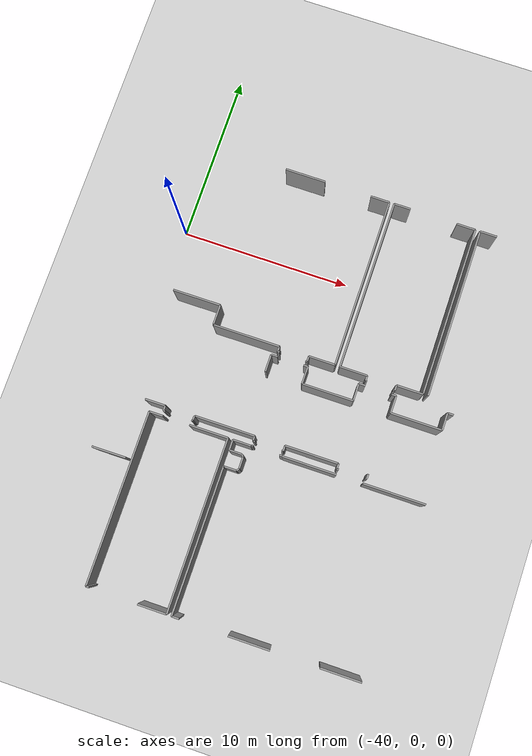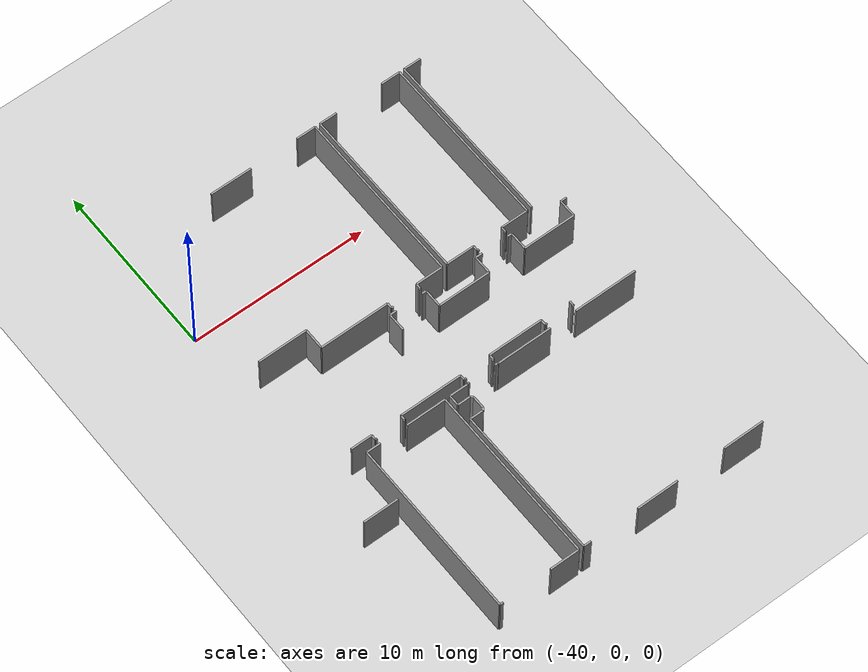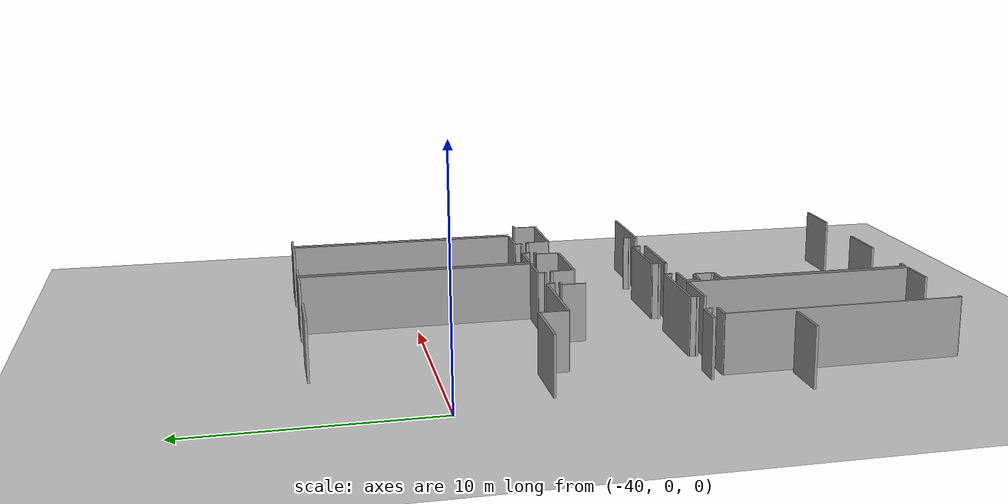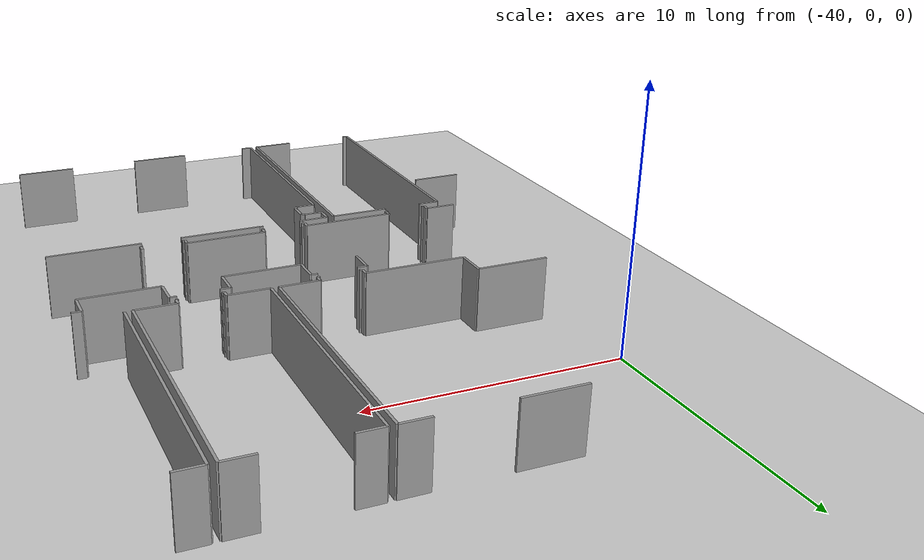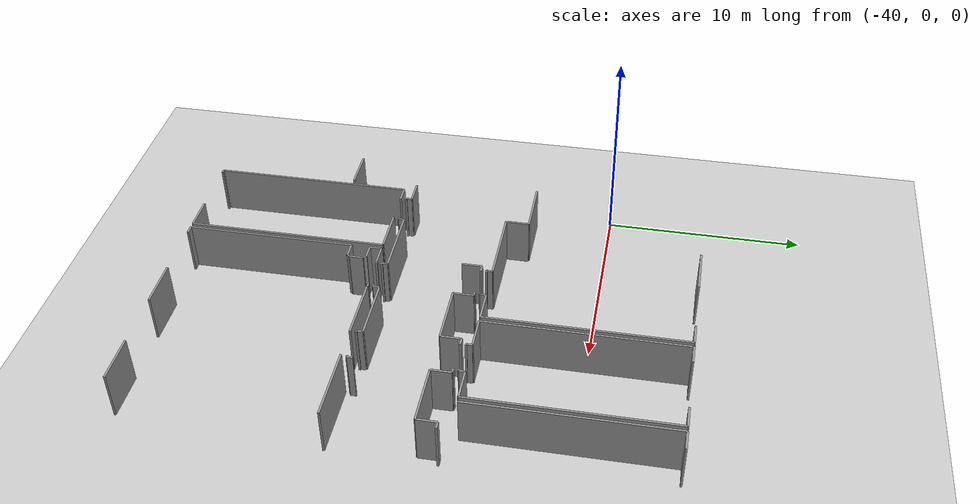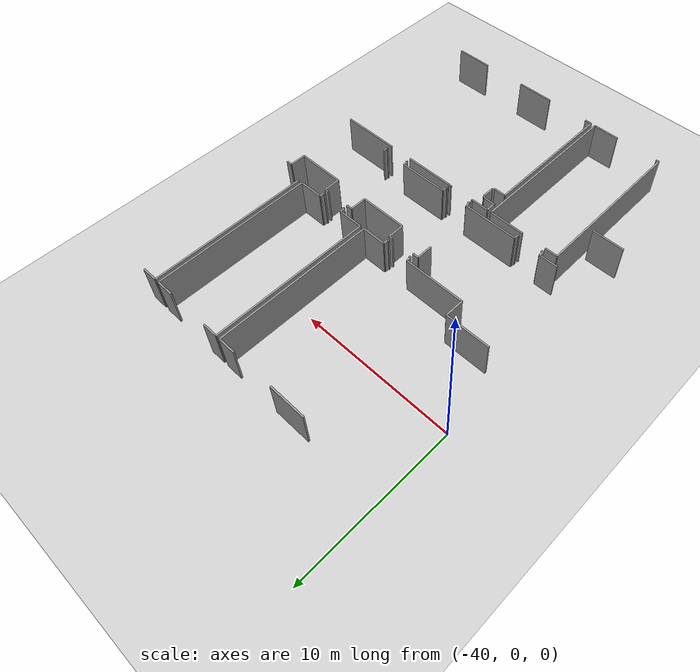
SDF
<sdf version="1.6">
 <world name="default">
  <model name="ground_plane">
   <static>1</static>
   <link name="link">
    <collision name="collision">
     <geometry><plane><normal>0 0 1</normal><size>100 100</size></plane></geometry>
     <surface><friction><ode><mu>100</mu><mu2>50</mu2></ode></friction></surface>
    </collision>
    <visual name="visual">
     <cast_shadows>0</cast_shadows>
     <geometry><plane><normal>0 0 1</normal><size>100 100</size></plane></geometry>
     <material>
      <script><uri>file://media/materials/scripts/gazebo.material</uri><name>Gazebo/Grey</name></script>
     </material>
    </visual>
   </link>
  </model>
  <model name="50055638">
   <static>1</static>
   <link name="Wall_106">
    <collision name="Wall_106_Collision">
     <geometry><box><size>1.99429670992 0.1 2.5</size></box></geometry>
     <pose>0.997148354958 0 1.25 0 0 0</pose>
    </collision>
    <visual name="Wall_106_Visual">
     <pose>0.997148354958 0 1.25 0 0 0</pose>
     <geometry><box><size>1.99429670992 0.1 2.5</size></box></geometry>
     <material>
      <script><uri>file://media/materials/scripts/gazebo.material</uri><name>Gazebo/Grey</name></script>
      <ambient>1 1 1 1</ambient>
     </material>
    </visual>
    <pose>32.276132919 -34.5657382164 0 0 0 -3.13974446246</pose>
   </link>
   <link name="Wall_107">
    <collision name="Wall_107_Collision">
     <geometry><box><size>9.97960078547 0.1 2.5</size></box></geometry>
     <pose>4.98980039273 0 1.25 0 0 0</pose>
    </collision>
    <visual name="Wall_107_Visual">
     <pose>4.98980039273 0 1.25 0 0 0</pose>
     <geometry><box><size>9.97960078547 0.1 2.5</size></box></geometry>
     <material>
      <script><uri>file://media/materials/scripts/gazebo.material</uri><name>Gazebo/Grey</name></script>
      <ambient>1 1 1 1</ambient>
     </material>
    </visual>
    <pose>32.6238728004 -41.7203337591 0 0 0 1.57079632679</pose>
   </link>
   <link name="Wall_108">
    <collision name="Wall_108_Collision">
     <geometry><box><size>0.806690433976 0.1 2.5</size></box></geometry>
     <pose>0.403345216988 0 1.25 0 0 0</pose>
    </collision>
    <visual name="Wall_108_Visual">
     <pose>0.403345216988 0 1.25 0 0 0</pose>
     <geometry><box><size>0.806690433976 0.1 2.5</size></box></geometry>
     <material>
      <script><uri>file://media/materials/scripts/gazebo.material</uri><name>Gazebo/Grey</name></script>
      <ambient>1 1 1 1</ambient>
     </material>
    </visual>
    <pose>32.6238728004 -31.7407329736 0 0 0 0.0</pose>
   </link>
   <link name="Wall_109">
    <collision name="Wall_109_Collision">
     <geometry><box><size>2.26513894979 0.1 2.5</size></box></geometry>
     <pose>1.13256947489 0 1.25 0 0 0</pose>
    </collision>
    <visual name="Wall_109_Visual">
     <pose>1.13256947489 0 1.25 0 0 0</pose>
     <geometry><box><size>2.26513894979 0.1 2.5</size></box></geometry>
     <material>
      <script><uri>file://media/materials/scripts/gazebo.material</uri><name>Gazebo/Grey</name></script>
      <ambient>1 1 1 1</ambient>
     </material>
    </visual>
    <pose>34.9831913014 -31.7407329736 0 0 0 0.0</pose>
   </link>
   <link name="Wall_110">
    <collision name="Wall_110_Collision">
     <geometry><box><size>9.98748085588 0.1 2.5</size></box></geometry>
     <pose>4.99374042794 0 1.25 0 0 0</pose>
    </collision>
    <visual name="Wall_110_Visual">
     <pose>4.99374042794 0 1.25 0 0 0</pose>
     <geometry><box><size>9.98748085588 0.1 2.5</size></box></geometry>
     <material>
      <script><uri>file://media/materials/scripts/gazebo.material</uri><name>Gazebo/Grey</name></script>
      <ambient>1 1 1 1</ambient>
     </material>
    </visual>
    <pose>37.2483302512 -31.7407329736 0 0 0 -1.57079632679</pose>
   </link>
   <link name="Wall_111">
    <collision name="Wall_111_Collision">
     <geometry><box><size>1.66536391309 0.1 2.5</size></box></geometry>
     <pose>0.832681956545 0 1.25 0 0 0</pose>
    </collision>
    <visual name="Wall_111_Visual">
     <pose>0.832681956545 0 1.25 0 0 0</pose>
     <geometry><box><size>1.66536391309 0.1 2.5</size></box></geometry>
     <material>
      <script><uri>file://media/materials/scripts/gazebo.material</uri><name>Gazebo/Grey</name></script>
      <ambient>1 1 1 1</ambient>
     </material>
    </visual>
    <pose>37.2483302512 -41.7282138295 0 0 0 3.14159265359</pose>
   </link>
   <link name="Wall_112">
    <collision name="Wall_112_Collision">
     <geometry><box><size>0.182174715188 0.1 2.5</size></box></geometry>
     <pose>0.091087357594 0 1.25 0 0 0</pose>
    </collision>
    <visual name="Wall_112_Visual">
     <pose>0.091087357594 0 1.25 0 0 0</pose>
     <geometry><box><size>0.182174715188 0.1 2.5</size></box></geometry>
     <material>
      <script><uri>file://media/materials/scripts/gazebo.material</uri><name>Gazebo/Grey</name></script>
      <ambient>1 1 1 1</ambient>
     </material>
    </visual>
    <pose>32.8058770074 -41.7282138295 0 0 0 3.0983235874</pose>
   </link>
   <link name="Wall_113">
    <collision name="Wall_113_Collision">
     <geometry><box><size>8.43904701987 0.1 2.5</size></box></geometry>
     <pose>4.21952350994 0 1.25 0 0 0</pose>
    </collision>
    <visual name="Wall_113_Visual">
     <pose>4.21952350994 0 1.25 0 0 0</pose>
     <geometry><box><size>8.43904701987 0.1 2.5</size></box></geometry>
     <material>
      <script><uri>file://media/materials/scripts/gazebo.material</uri><name>Gazebo/Grey</name></script>
      <ambient>1 1 1 1</ambient>
     </material>
    </visual>
    <pose>37.5308689049 -41.7291035149 0 0 0 1.57079632679</pose>
   </link>
   <link name="Wall_114">
    <collision name="Wall_114_Collision">
     <geometry><box><size>0.747971199614 0.1 2.5</size></box></geometry>
     <pose>0.373985599807 0 1.25 0 0 0</pose>
    </collision>
    <visual name="Wall_114_Visual">
     <pose>0.373985599807 0 1.25 0 0 0</pose>
     <geometry><box><size>0.747971199614 0.1 2.5</size></box></geometry>
     <material>
      <script><uri>file://media/materials/scripts/gazebo.material</uri><name>Gazebo/Grey</name></script>
      <ambient>1 1 1 1</ambient>
     </material>
    </visual>
    <pose>37.5308689049 -33.290056495 0 0 0 0.0</pose>
   </link>
   <link name="Wall_115">
    <collision name="Wall_115_Collision">
     <geometry><box><size>0.171066137984 0.1 2.5</size></box></geometry>
     <pose>0.0855330689918 0 1.25 0 0 0</pose>
    </collision>
    <visual name="Wall_115_Visual">
     <pose>0.0855330689918 0 1.25 0 0 0</pose>
     <geometry><box><size>0.171066137984 0.1 2.5</size></box></geometry>
     <material>
      <script><uri>file://media/materials/scripts/gazebo.material</uri><name>Gazebo/Grey</name></script>
      <ambient>1 1 1 1</ambient>
     </material>
    </visual>
    <pose>38.2788401045 -33.290056495 0 0 0 0.91288099865</pose>
   </link>
   <link name="Wall_116">
    <collision name="Wall_116_Collision">
     <geometry><box><size>0.687472594513 0.1 2.5</size></box></geometry>
     <pose>0.343736297257 0 1.25 0 0 0</pose>
    </collision>
    <visual name="Wall_116_Visual">
     <pose>0.343736297257 0 1.25 0 0 0</pose>
     <geometry><box><size>0.687472594513 0.1 2.5</size></box></geometry>
     <material>
      <script><uri>file://media/materials/scripts/gazebo.material</uri><name>Gazebo/Grey</name></script>
      <ambient>1 1 1 1</ambient>
     </material>
    </visual>
    <pose>38.3834416843 -33.154697221 0 0 0 1.57079632679</pose>
   </link>
   <link name="Wall_117">
    <collision name="Wall_117_Collision">
     <geometry><box><size>0.177099980748 0.1 2.5</size></box></geometry>
     <pose>0.0885499903742 0 1.25 0 0 0</pose>
    </collision>
    <visual name="Wall_117_Visual">
     <pose>0.0885499903742 0 1.25 0 0 0</pose>
     <geometry><box><size>0.177099980748 0.1 2.5</size></box></geometry>
     <material>
      <script><uri>file://media/materials/scripts/gazebo.material</uri><name>Gazebo/Grey</name></script>
      <ambient>1 1 1 1</ambient>
     </material>
    </visual>
    <pose>38.3834416843 -32.4672246265 0 0 0 2.3805551524</pose>
   </link>
   <link name="Wall_118">
    <collision name="Wall_118_Collision">
     <geometry><box><size>0.720263855261 0.1 2.5</size></box></geometry>
     <pose>0.36013192763 0 1.25 0 0 0</pose>
    </collision>
    <visual name="Wall_118_Visual">
     <pose>0.36013192763 0 1.25 0 0 0</pose>
     <geometry><box><size>0.720263855261 0.1 2.5</size></box></geometry>
     <material>
      <script><uri>file://media/materials/scripts/gazebo.material</uri><name>Gazebo/Grey</name></script>
      <ambient>1 1 1 1</ambient>
     </material>
    </visual>
    <pose>38.2551998932 -32.3450835351 0 0 0 3.14159265359</pose>
   </link>
   <link name="Wall_119">
    <collision name="Wall_119_Collision">
     <geometry><box><size>0.598122763871 0.1 2.5</size></box></geometry>
     <pose>0.299061381936 0 1.25 0 0 0</pose>
    </collision>
    <visual name="Wall_119_Visual">
     <pose>0.299061381936 0 1.25 0 0 0</pose>
     <geometry><box><size>0.598122763871 0.1 2.5</size></box></geometry>
     <material>
      <script><uri>file://media/materials/scripts/gazebo.material</uri><name>Gazebo/Grey</name></script>
      <ambient>1 1 1 1</ambient>
     </material>
    </visual>
    <pose>37.534936038 -32.3450835351 0 0 0 1.57079632679</pose>
   </link>
   <link name="Wall_120">
    <collision name="Wall_120_Collision">
     <geometry><box><size>1.05974237254 0.1 2.5</size></box></geometry>
     <pose>0.529871186268 0 1.25 0 0 0</pose>
    </collision>
    <visual name="Wall_120_Visual">
     <pose>0.529871186268 0 1.25 0 0 0</pose>
     <geometry><box><size>1.05974237254 0.1 2.5</size></box></geometry>
     <material>
      <script><uri>file://media/materials/scripts/gazebo.material</uri><name>Gazebo/Grey</name></script>
      <ambient>1 1 1 1</ambient>
     </material>
    </visual>
    <pose>37.534936038 -31.7469607712 0 0 0 0.0</pose>
   </link>
   <link name="Wall_121">
    <collision name="Wall_121_Collision">
     <geometry><box><size>0.0251653861552 0.1 2.5</size></box></geometry>
     <pose>0.0125826930776 0 1.25 0 0 0</pose>
    </collision>
    <visual name="Wall_121_Visual">
     <pose>0.0125826930776 0 1.25 0 0 0</pose>
     <geometry><box><size>0.0251653861552 0.1 2.5</size></box></geometry>
     <material>
      <script><uri>file://media/materials/scripts/gazebo.material</uri><name>Gazebo/Grey</name></script>
      <ambient>1 1 1 1</ambient>
     </material>
    </visual>
    <pose>38.5946784105 -31.7469607712 0 0 0 1.57079632679</pose>
   </link>
   <link name="Wall_122">
    <collision name="Wall_122_Collision">
     <geometry><box><size>0.113244237699 0.1 2.5</size></box></geometry>
     <pose>0.0566221188493 0 1.25 0 0 0</pose>
    </collision>
    <visual name="Wall_122_Visual">
     <pose>0.0566221188493 0 1.25 0 0 0</pose>
     <geometry><box><size>0.113244237699 0.1 2.5</size></box></geometry>
     <material>
      <script><uri>file://media/materials/scripts/gazebo.material</uri><name>Gazebo/Grey</name></script>
      <ambient>1 1 1 1</ambient>
     </material>
    </visual>
    <pose>38.5946784105 -31.7217953851 0 0 0 0.0</pose>
   </link>
   <link name="Wall_123">
    <collision name="Wall_123_Collision">
     <geometry><box><size>0.161541443451 0.1 2.5</size></box></geometry>
     <pose>0.0807707217255 0 1.25 0 0 0</pose>
    </collision>
    <visual name="Wall_123_Visual">
     <pose>0.0807707217255 0 1.25 0 0 0</pose>
     <geometry><box><size>0.161541443451 0.1 2.5</size></box></geometry>
     <material>
      <script><uri>file://media/materials/scripts/gazebo.material</uri><name>Gazebo/Grey</name></script>
      <ambient>1 1 1 1</ambient>
     </material>
    </visual>
    <pose>40.241104735 -31.7217953851 0 0 0 0.0</pose>
   </link>
   <link name="Wall_124">
    <collision name="Wall_124_Collision">
     <geometry><box><size>0.0218608404985 0.1 2.5</size></box></geometry>
     <pose>0.0109304202492 0 1.25 0 0 0</pose>
    </collision>
    <visual name="Wall_124_Visual">
     <pose>0.0109304202492 0 1.25 0 0 0</pose>
     <geometry><box><size>0.0218608404985 0.1 2.5</size></box></geometry>
     <material>
      <script><uri>file://media/materials/scripts/gazebo.material</uri><name>Gazebo/Grey</name></script>
      <ambient>1 1 1 1</ambient>
     </material>
    </visual>
    <pose>40.4026461785 -31.7217953851 0 0 0 -1.57079632679</pose>
   </link>
   <link name="Wall_125">
    <collision name="Wall_125_Collision">
     <geometry><box><size>3.15609529801 0.1 2.5</size></box></geometry>
     <pose>1.57804764901 0 1.25 0 0 0</pose>
    </collision>
    <visual name="Wall_125_Visual">
     <pose>1.57804764901 0 1.25 0 0 0</pose>
     <geometry><box><size>3.15609529801 0.1 2.5</size></box></geometry>
     <material>
      <script><uri>file://media/materials/scripts/gazebo.material</uri><name>Gazebo/Grey</name></script>
      <ambient>1 1 1 1</ambient>
     </material>
    </visual>
    <pose>40.4026461785 -31.7436562256 0 0 0 0.0</pose>
   </link>
   <link name="Wall_126">
    <collision name="Wall_126_Collision">
     <geometry><box><size>3.60881805299 0.1 2.5</size></box></geometry>
     <pose>1.80440902649 0 1.25 0 0 0</pose>
    </collision>
    <visual name="Wall_126_Visual">
     <pose>1.80440902649 0 1.25 0 0 0</pose>
     <geometry><box><size>3.60881805299 0.1 2.5</size></box></geometry>
     <material>
      <script><uri>file://media/materials/scripts/gazebo.material</uri><name>Gazebo/Grey</name></script>
      <ambient>1 1 1 1</ambient>
     </material>
    </visual>
    <pose>45.0959906964 -31.7436562256 0 0 0 0.0</pose>
   </link>
   <link name="Wall_130">
    <collision name="Wall_130_Collision">
     <geometry><box><size>2.34482933928 0.1 2.5</size></box></geometry>
     <pose>1.17241466964 0 1.25 0 0 0</pose>
    </collision>
    <visual name="Wall_130_Visual">
     <pose>1.17241466964 0 1.25 0 0 0</pose>
     <geometry><box><size>2.34482933928 0.1 2.5</size></box></geometry>
     <material>
      <script><uri>file://media/materials/scripts/gazebo.material</uri><name>Gazebo/Grey</name></script>
      <ambient>1 1 1 1</ambient>
     </material>
    </visual>
    <pose>48.2642873938 -41.7353313125 0 0 0 3.14159265359</pose>
   </link>
   <link name="Wall_131">
    <collision name="Wall_131_Collision">
     <geometry><box><size>2.36897794216 0.1 2.5</size></box></geometry>
     <pose>1.18448897108 0 1.25 0 0 0</pose>
    </collision>
    <visual name="Wall_131_Visual">
     <pose>1.18448897108 0 1.25 0 0 0</pose>
     <geometry><box><size>2.36897794216 0.1 2.5</size></box></geometry>
     <material>
      <script><uri>file://media/materials/scripts/gazebo.material</uri><name>Gazebo/Grey</name></script>
      <ambient>1 1 1 1</ambient>
     </material>
    </visual>
    <pose>43.1066542111 -41.7353313125 0 0 0 3.14159265359</pose>
   </link>
   <link name="Wall_132">
    <collision name="Wall_132_Collision">
     <geometry><box><size>0.434211124416 0.1 2.5</size></box></geometry>
     <pose>0.217105562208 0 1.25 0 0 0</pose>
    </collision>
    <visual name="Wall_132_Visual">
     <pose>0.217105562208 0 1.25 0 0 0</pose>
     <geometry><box><size>0.434211124416 0.1 2.5</size></box></geometry>
     <material>
      <script><uri>file://media/materials/scripts/gazebo.material</uri><name>Gazebo/Grey</name></script>
      <ambient>1 1 1 1</ambient>
     </material>
    </visual>
    <pose>37.965035365 -41.7353313125 0 0 0 3.12724937499</pose>
   </link>
   <link name="Wall_146">
    <collision name="Wall_146_Collision">
     <geometry><box><size>2.38867811819 0.1 2.5</size></box></geometry>
     <pose>1.19433905909 0 1.25 0 0 0</pose>
    </collision>
    <visual name="Wall_146_Visual">
     <pose>1.19433905909 0 1.25 0 0 0</pose>
     <geometry><box><size>2.38867811819 0.1 2.5</size></box></geometry>
     <material>
      <script><uri>file://media/materials/scripts/gazebo.material</uri><name>Gazebo/Grey</name></script>
      <ambient>1 1 1 1</ambient>
     </material>
    </visual>
    <pose>35.3083077549 -15.9814818345 0 0 0 0.0</pose>
   </link>
   <link name="Wall_147">
    <collision name="Wall_147_Collision">
     <geometry><box><size>1.11528415915 0.1 2.5</size></box></geometry>
     <pose>0.557642079576 0 1.25 0 0 0</pose>
    </collision>
    <visual name="Wall_147_Visual">
     <pose>0.557642079576 0 1.25 0 0 0</pose>
     <geometry><box><size>1.11528415915 0.1 2.5</size></box></geometry>
     <material>
      <script><uri>file://media/materials/scripts/gazebo.material</uri><name>Gazebo/Grey</name></script>
      <ambient>1 1 1 1</ambient>
     </material>
    </visual>
    <pose>40.4621280003 -15.9814818345 0 0 0 0.0</pose>
   </link>
   <link name="Wall_148">
    <collision name="Wall_148_Collision">
     <geometry><box><size>9.99218347854 0.1 2.5</size></box></geometry>
     <pose>4.99609173927 0 1.25 0 0 0</pose>
    </collision>
    <visual name="Wall_148_Visual">
     <pose>4.99609173927 0 1.25 0 0 0</pose>
     <geometry><box><size>9.99218347854 0.1 2.5</size></box></geometry>
     <material>
      <script><uri>file://media/materials/scripts/gazebo.material</uri><name>Gazebo/Grey</name></script>
      <ambient>1 1 1 1</ambient>
     </material>
    </visual>
    <pose>41.5774121595 -15.9814818345 0 0 0 -1.57079632679</pose>
   </link>
   <link name="Wall_149">
    <collision name="Wall_149_Collision">
     <geometry><box><size>1.54347701752 0.1 2.5</size></box></geometry>
     <pose>0.77173850876 0 1.25 0 0 0</pose>
    </collision>
    <visual name="Wall_149_Visual">
     <pose>0.77173850876 0 1.25 0 0 0</pose>
     <geometry><box><size>1.54347701752 0.1 2.5</size></box></geometry>
     <material>
      <script><uri>file://media/materials/scripts/gazebo.material</uri><name>Gazebo/Grey</name></script>
      <ambient>1 1 1 1</ambient>
     </material>
    </visual>
    <pose>41.5774121595 -25.9736653131 0 0 0 3.14159265359</pose>
   </link>
   <link name="Wall_150">
    <collision name="Wall_150_Collision">
     <geometry><box><size>0.305797571159 0.1 2.5</size></box></geometry>
     <pose>0.152898785579 0 1.25 0 0 0</pose>
    </collision>
    <visual name="Wall_150_Visual">
     <pose>0.152898785579 0 1.25 0 0 0</pose>
     <geometry><box><size>0.305797571159 0.1 2.5</size></box></geometry>
     <material>
      <script><uri>file://media/materials/scripts/gazebo.material</uri><name>Gazebo/Grey</name></script>
      <ambient>1 1 1 1</ambient>
     </material>
    </visual>
    <pose>40.0339351419 -25.9736653131 0 0 0 -1.57079632679</pose>
   </link>
   <link name="Wall_151">
    <collision name="Wall_151_Collision">
     <geometry><box><size>0.0955776282259 0.1 2.5</size></box></geometry>
     <pose>0.047788814113 0 1.25 0 0 0</pose>
    </collision>
    <visual name="Wall_151_Visual">
     <pose>0.047788814113 0 1.25 0 0 0</pose>
     <geometry><box><size>0.0955776282259 0.1 2.5</size></box></geometry>
     <material>
      <script><uri>file://media/materials/scripts/gazebo.material</uri><name>Gazebo/Grey</name></script>
      <ambient>1 1 1 1</ambient>
     </material>
    </visual>
    <pose>40.0339351419 -26.2794628842 0 0 0 3.14159265359</pose>
   </link>
   <link name="Wall_152">
    <collision name="Wall_152_Collision">
     <geometry><box><size>0.116294587535 0.1 2.5</size></box></geometry>
     <pose>0.0581472937677 0 1.25 0 0 0</pose>
    </collision>
    <visual name="Wall_152_Visual">
     <pose>0.0581472937677 0 1.25 0 0 0</pose>
     <geometry><box><size>0.116294587535 0.1 2.5</size></box></geometry>
     <material>
      <script><uri>file://media/materials/scripts/gazebo.material</uri><name>Gazebo/Grey</name></script>
      <ambient>1 1 1 1</ambient>
     </material>
    </visual>
    <pose>38.4074631893 -26.2794628842 0 0 0 3.14159265359</pose>
   </link>
   <link name="Wall_153">
    <collision name="Wall_153_Collision">
     <geometry><box><size>0.305670473249 0.1 2.5</size></box></geometry>
     <pose>0.152835236625 0 1.25 0 0 0</pose>
    </collision>
    <visual name="Wall_153_Visual">
     <pose>0.152835236625 0 1.25 0 0 0</pose>
     <geometry><box><size>0.305670473249 0.1 2.5</size></box></geometry>
     <material>
      <script><uri>file://media/materials/scripts/gazebo.material</uri><name>Gazebo/Grey</name></script>
      <ambient>1 1 1 1</ambient>
     </material>
    </visual>
    <pose>38.2911686017 -26.2794628842 0 0 0 1.57079632679</pose>
   </link>
   <link name="Wall_154">
    <collision name="Wall_154_Collision">
     <geometry><box><size>3.93101125452 0.1 2.5</size></box></geometry>
     <pose>1.96550562726 0 1.25 0 0 0</pose>
    </collision>
    <visual name="Wall_154_Visual">
     <pose>1.96550562726 0 1.25 0 0 0</pose>
     <geometry><box><size>3.93101125452 0.1 2.5</size></box></geometry>
     <material>
      <script><uri>file://media/materials/scripts/gazebo.material</uri><name>Gazebo/Grey</name></script>
      <ambient>1 1 1 1</ambient>
     </material>
    </visual>
    <pose>38.2911686017 -25.973792411 0 0 0 3.14159265359</pose>
   </link>
   <link name="Wall_155">
    <collision name="Wall_155_Collision">
     <geometry><box><size>1.18506091167 0.1 2.5</size></box></geometry>
     <pose>0.592530455837 0 1.25 0 0 0</pose>
    </collision>
    <visual name="Wall_155_Visual">
     <pose>0.592530455837 0 1.25 0 0 0</pose>
     <geometry><box><size>1.18506091167 0.1 2.5</size></box></geometry>
     <material>
      <script><uri>file://media/materials/scripts/gazebo.material</uri><name>Gazebo/Grey</name></script>
      <ambient>1 1 1 1</ambient>
     </material>
    </visual>
    <pose>34.3601573472 -25.973792411 0 0 0 1.57079632679</pose>
   </link>
   <link name="Wall_156">
    <collision name="Wall_156_Collision">
     <geometry><box><size>2.80404943765 0.1 2.5</size></box></geometry>
     <pose>1.40202471882 0 1.25 0 0 0</pose>
    </collision>
    <visual name="Wall_156_Visual">
     <pose>1.40202471882 0 1.25 0 0 0</pose>
     <geometry><box><size>2.80404943765 0.1 2.5</size></box></geometry>
     <material>
      <script><uri>file://media/materials/scripts/gazebo.material</uri><name>Gazebo/Grey</name></script>
      <ambient>1 1 1 1</ambient>
     </material>
    </visual>
    <pose>34.3601573472 -24.7887314993 0 0 0 -3.13828380881</pose>
   </link>
   <link name="Wall_157">
    <collision name="Wall_157_Collision">
     <geometry><box><size>9.99777578658 0.1 2.5</size></box></geometry>
     <pose>4.99888789329 0 1.25 0 0 0</pose>
    </collision>
    <visual name="Wall_157_Visual">
     <pose>4.99888789329 0 1.25 0 0 0</pose>
     <geometry><box><size>9.99777578658 0.1 2.5</size></box></geometry>
     <material>
      <script><uri>file://media/materials/scripts/gazebo.material</uri><name>Gazebo/Grey</name></script>
      <ambient>1 1 1 1</ambient>
     </material>
    </visual>
    <pose>41.864272142 -25.977986642 0 0 0 1.57079632679</pose>
   </link>
   <link name="Wall_158">
    <collision name="Wall_158_Collision">
     <geometry><box><size>0.990855305385 0.1 2.5</size></box></geometry>
     <pose>0.495427652692 0 1.25 0 0 0</pose>
    </collision>
    <visual name="Wall_158_Visual">
     <pose>0.495427652692 0 1.25 0 0 0</pose>
     <geometry><box><size>0.990855305385 0.1 2.5</size></box></geometry>
     <material>
      <script><uri>file://media/materials/scripts/gazebo.material</uri><name>Gazebo/Grey</name></script>
      <ambient>1 1 1 1</ambient>
     </material>
    </visual>
    <pose>41.864272142 -15.9802108554 0 0 0 0.0</pose>
   </link>
   <link name="Wall_159">
    <collision name="Wall_159_Collision">
     <geometry><box><size>1.10575181591 0.1 2.5</size></box></geometry>
     <pose>0.552875907956 0 1.25 0 0 0</pose>
    </collision>
    <visual name="Wall_159_Visual">
     <pose>0.552875907956 0 1.25 0 0 0</pose>
     <geometry><box><size>1.10575181591 0.1 2.5</size></box></geometry>
     <material>
      <script><uri>file://media/materials/scripts/gazebo.material</uri><name>Gazebo/Grey</name></script>
      <ambient>1 1 1 1</ambient>
     </material>
    </visual>
    <pose>45.6355213239 -15.9802108554 0 0 0 0.0</pose>
   </link>
   <link name="Wall_160">
    <collision name="Wall_160_Collision">
     <geometry><box><size>9.99815708031 0.1 2.5</size></box></geometry>
     <pose>4.99907854015 0 1.25 0 0 0</pose>
    </collision>
    <visual name="Wall_160_Visual">
     <pose>4.99907854015 0 1.25 0 0 0</pose>
     <geometry><box><size>9.99815708031 0.1 2.5</size></box></geometry>
     <material>
      <script><uri>file://media/materials/scripts/gazebo.material</uri><name>Gazebo/Grey</name></script>
      <ambient>1 1 1 1</ambient>
     </material>
    </visual>
    <pose>46.7412731398 -15.9802108554 0 0 0 -1.57079632679</pose>
   </link>
   <link name="Wall_161">
    <collision name="Wall_161_Collision">
     <geometry><box><size>1.55656810224 0.1 2.5</size></box></geometry>
     <pose>0.778284051119 0 1.25 0 0 0</pose>
    </collision>
    <visual name="Wall_161_Visual">
     <pose>0.778284051119 0 1.25 0 0 0</pose>
     <geometry><box><size>1.55656810224 0.1 2.5</size></box></geometry>
     <material>
      <script><uri>file://media/materials/scripts/gazebo.material</uri><name>Gazebo/Grey</name></script>
      <ambient>1 1 1 1</ambient>
     </material>
    </visual>
    <pose>46.7412731398 -25.9783679357 0 0 0 3.14159265359</pose>
   </link>
   <link name="Wall_162">
    <collision name="Wall_162_Collision">
     <geometry><box><size>0.296265227918 0.1 2.5</size></box></geometry>
     <pose>0.148132613959 0 1.25 0 0 0</pose>
    </collision>
    <visual name="Wall_162_Visual">
     <pose>0.148132613959 0 1.25 0 0 0</pose>
     <geometry><box><size>0.296265227918 0.1 2.5</size></box></geometry>
     <material>
      <script><uri>file://media/materials/scripts/gazebo.material</uri><name>Gazebo/Grey</name></script>
      <ambient>1 1 1 1</ambient>
     </material>
    </visual>
    <pose>45.1847050375 -25.9783679357 0 0 0 -1.57079632679</pose>
   </link>
   <link name="Wall_163">
    <collision name="Wall_163_Collision">
     <geometry><box><size>0.0955776282259 0.1 2.5</size></box></geometry>
     <pose>0.047788814113 0 1.25 0 0 0</pose>
    </collision>
    <visual name="Wall_163_Visual">
     <pose>0.047788814113 0 1.25 0 0 0</pose>
     <geometry><box><size>0.0955776282259 0.1 2.5</size></box></geometry>
     <material>
      <script><uri>file://media/materials/scripts/gazebo.material</uri><name>Gazebo/Grey</name></script>
      <ambient>1 1 1 1</ambient>
     </material>
    </visual>
    <pose>45.1847050375 -26.2746331637 0 0 0 3.14159265359</pose>
   </link>
   <link name="Wall_164">
    <collision name="Wall_164_Collision">
     <geometry><box><size>0.090366613921 0.1 2.5</size></box></geometry>
     <pose>0.0451833069605 0 1.25 0 0 0</pose>
    </collision>
    <visual name="Wall_164_Visual">
     <pose>0.0451833069605 0 1.25 0 0 0</pose>
     <geometry><box><size>0.090366613921 0.1 2.5</size></box></geometry>
     <material>
      <script><uri>file://media/materials/scripts/gazebo.material</uri><name>Gazebo/Grey</name></script>
      <ambient>1 1 1 1</ambient>
     </material>
    </visual>
    <pose>43.5602666514 -26.2746331637 0 0 0 3.14159265359</pose>
   </link>
   <link name="Wall_165">
    <collision name="Wall_165_Collision">
     <geometry><box><size>0.295121346729 0.1 2.5</size></box></geometry>
     <pose>0.147560673365 0 1.25 0 0 0</pose>
    </collision>
    <visual name="Wall_165_Visual">
     <pose>0.147560673365 0 1.25 0 0 0</pose>
     <geometry><box><size>0.295121346729 0.1 2.5</size></box></geometry>
     <material>
      <script><uri>file://media/materials/scripts/gazebo.material</uri><name>Gazebo/Grey</name></script>
      <ambient>1 1 1 1</ambient>
     </material>
    </visual>
    <pose>43.4699000375 -26.2746331637 0 0 0 1.57079632679</pose>
   </link>
   <link name="Wall_166">
    <collision name="Wall_166_Collision">
     <geometry><box><size>1.60562861983 0.1 2.5</size></box></geometry>
     <pose>0.802814309913 0 1.25 0 0 0</pose>
    </collision>
    <visual name="Wall_166_Visual">
     <pose>0.802814309913 0 1.25 0 0 0</pose>
     <geometry><box><size>1.60562861983 0.1 2.5</size></box></geometry>
     <material>
      <script><uri>file://media/materials/scripts/gazebo.material</uri><name>Gazebo/Grey</name></script>
      <ambient>1 1 1 1</ambient>
     </material>
    </visual>
    <pose>43.4699000375 -25.9795118169 0 0 0 3.14064276074</pose>
   </link>
   <link name="Wall_167">
    <collision name="Wall_167_Collision">
     <geometry><box><size>9.98875183498 0.1 2.5</size></box></geometry>
     <pose>4.99437591749 0 1.25 0 0 0</pose>
    </collision>
    <visual name="Wall_167_Visual">
     <pose>4.99437591749 0 1.25 0 0 0</pose>
     <geometry><box><size>9.98875183498 0.1 2.5</size></box></geometry>
     <material>
      <script><uri>file://media/materials/scripts/gazebo.material</uri><name>Gazebo/Grey</name></script>
      <ambient>1 1 1 1</ambient>
     </material>
    </visual>
    <pose>47.0257182621 -25.966674928 0 0 0 1.57079632679</pose>
   </link>
   <link name="Wall_168">
    <collision name="Wall_168_Collision">
     <geometry><box><size>0.997083102968 0.1 2.5</size></box></geometry>
     <pose>0.498541551484 0 1.25 0 0 0</pose>
    </collision>
    <visual name="Wall_168_Visual">
     <pose>0.498541551484 0 1.25 0 0 0</pose>
     <geometry><box><size>0.997083102968 0.1 2.5</size></box></geometry>
     <material>
      <script><uri>file://media/materials/scripts/gazebo.material</uri><name>Gazebo/Grey</name></script>
      <ambient>1 1 1 1</ambient>
     </material>
    </visual>
    <pose>47.0257182621 -15.9779230931 0 0 0 0.0</pose>
   </link>
   <link name="Wall_190">
    <collision name="Wall_190_Collision">
     <geometry><box><size>1.01398712498 0.1 2.5</size></box></geometry>
     <pose>0.506993562491 0 1.25 0 0 0</pose>
    </collision>
    <visual name="Wall_190_Visual">
     <pose>0.506993562491 0 1.25 0 0 0</pose>
     <geometry><box><size>1.01398712498 0.1 2.5</size></box></geometry>
     <material>
      <script><uri>file://media/materials/scripts/gazebo.material</uri><name>Gazebo/Grey</name></script>
      <ambient>1 1 1 1</ambient>
     </material>
    </visual>
    <pose>38.003164738 -27.5609911095 0 0 0 1.57079632679</pose>
   </link>
   <link name="Wall_191">
    <collision name="Wall_191_Collision">
     <geometry><box><size>0.377480792328 0.1 2.5</size></box></geometry>
     <pose>0.188740396164 0 1.25 0 0 0</pose>
    </collision>
    <visual name="Wall_191_Visual">
     <pose>0.188740396164 0 1.25 0 0 0</pose>
     <geometry><box><size>0.377480792328 0.1 2.5</size></box></geometry>
     <material>
      <script><uri>file://media/materials/scripts/gazebo.material</uri><name>Gazebo/Grey</name></script>
      <ambient>1 1 1 1</ambient>
     </material>
    </visual>
    <pose>38.003164738 -26.5470039845 0 0 0 0.0</pose>
   </link>
   <link name="Wall_192">
    <collision name="Wall_192_Collision">
     <geometry><box><size>0.245934455608 0.1 2.5</size></box></geometry>
     <pose>0.122967227804 0 1.25 0 0 0</pose>
    </collision>
    <visual name="Wall_192_Visual">
     <pose>0.122967227804 0 1.25 0 0 0</pose>
     <geometry><box><size>0.245934455608 0.1 2.5</size></box></geometry>
     <material>
      <script><uri>file://media/materials/scripts/gazebo.material</uri><name>Gazebo/Grey</name></script>
      <ambient>1 1 1 1</ambient>
     </material>
    </visual>
    <pose>39.9199283168 -26.5470039845 0 0 0 0.0</pose>
   </link>
   <link name="Wall_193">
    <collision name="Wall_193_Collision">
     <geometry><box><size>1.02212139121 0.1 2.5</size></box></geometry>
     <pose>0.511060695607 0 1.25 0 0 0</pose>
    </collision>
    <visual name="Wall_193_Visual">
     <pose>0.511060695607 0 1.25 0 0 0</pose>
     <geometry><box><size>1.02212139121 0.1 2.5</size></box></geometry>
     <material>
      <script><uri>file://media/materials/scripts/gazebo.material</uri><name>Gazebo/Grey</name></script>
      <ambient>1 1 1 1</ambient>
     </material>
    </visual>
    <pose>40.1658627724 -26.5470039845 0 0 0 -1.57079632679</pose>
   </link>
   <link name="Wall_194">
    <collision name="Wall_194_Collision">
     <geometry><box><size>2.99696871485 0.1 2.5</size></box></geometry>
     <pose>1.49848435742 0 1.25 0 0 0</pose>
    </collision>
    <visual name="Wall_194_Visual">
     <pose>1.49848435742 0 1.25 0 0 0</pose>
     <geometry><box><size>2.99696871485 0.1 2.5</size></box></geometry>
     <material>
      <script><uri>file://media/materials/scripts/gazebo.material</uri><name>Gazebo/Grey</name></script>
      <ambient>1 1 1 1</ambient>
     </material>
    </visual>
    <pose>40.1658627724 -27.5691253757 0 0 0 0.0</pose>
   </link>
   <link name="Wall_195">
    <collision name="Wall_195_Collision">
     <geometry><box><size>1.02606142642 0.1 2.5</size></box></geometry>
     <pose>0.51303071321 0 1.25 0 0 0</pose>
    </collision>
    <visual name="Wall_195_Visual">
     <pose>0.51303071321 0 1.25 0 0 0</pose>
     <geometry><box><size>1.02606142642 0.1 2.5</size></box></geometry>
     <material>
      <script><uri>file://media/materials/scripts/gazebo.material</uri><name>Gazebo/Grey</name></script>
      <ambient>1 1 1 1</ambient>
     </material>
    </visual>
    <pose>43.1628314872 -27.5691253757 0 0 0 1.57079632679</pose>
   </link>
   <link name="Wall_196">
    <collision name="Wall_196_Collision">
     <geometry><box><size>0.382946002453 0.1 2.5</size></box></geometry>
     <pose>0.191473001226 0 1.25 0 0 0</pose>
    </collision>
    <visual name="Wall_196_Visual">
     <pose>0.191473001226 0 1.25 0 0 0</pose>
     <geometry><box><size>0.382946002453 0.1 2.5</size></box></geometry>
     <material>
      <script><uri>file://media/materials/scripts/gazebo.material</uri><name>Gazebo/Grey</name></script>
      <ambient>1 1 1 1</ambient>
     </material>
    </visual>
    <pose>43.1628314872 -26.5430639493 0 0 0 0.0</pose>
   </link>
   <link name="Wall_197">
    <collision name="Wall_197_Collision">
     <geometry><box><size>0.25432291766 0.1 2.5</size></box></geometry>
     <pose>0.12716145883 0 1.25 0 0 0</pose>
    </collision>
    <visual name="Wall_197_Visual">
     <pose>0.12716145883 0 1.25 0 0 0</pose>
     <geometry><box><size>0.25432291766 0.1 2.5</size></box></geometry>
     <material>
      <script><uri>file://media/materials/scripts/gazebo.material</uri><name>Gazebo/Grey</name></script>
      <ambient>1 1 1 1</ambient>
     </material>
    </visual>
    <pose>45.0905254863 -26.5430639493 0 0 0 0.0</pose>
   </link>
   <link name="Wall_198">
    <collision name="Wall_198_Collision">
     <geometry><box><size>1.01716457273 0.1 2.5</size></box></geometry>
     <pose>0.508582286364 0 1.25 0 0 0</pose>
    </collision>
    <visual name="Wall_198_Visual">
     <pose>0.508582286364 0 1.25 0 0 0</pose>
     <geometry><box><size>1.01716457273 0.1 2.5</size></box></geometry>
     <material>
      <script><uri>file://media/materials/scripts/gazebo.material</uri><name>Gazebo/Grey</name></script>
      <ambient>1 1 1 1</ambient>
     </material>
    </visual>
    <pose>45.344848404 -26.5430639493 0 0 0 -1.57079632679</pose>
   </link>
   <link name="Wall_199">
    <collision name="Wall_199_Collision">
     <geometry><box><size>2.99404546292 0.1 2.5</size></box></geometry>
     <pose>1.49702273146 0 1.25 0 0 0</pose>
    </collision>
    <visual name="Wall_199_Visual">
     <pose>1.49702273146 0 1.25 0 0 0</pose>
     <geometry><box><size>2.99404546292 0.1 2.5</size></box></geometry>
     <material>
      <script><uri>file://media/materials/scripts/gazebo.material</uri><name>Gazebo/Grey</name></script>
      <ambient>1 1 1 1</ambient>
     </material>
    </visual>
    <pose>45.344848404 -27.560228522 0 0 0 0.0</pose>
   </link>
   <link name="Wall_200">
    <collision name="Wall_200_Collision">
     <geometry><box><size>1.00254831309 0.1 2.5</size></box></geometry>
     <pose>0.501274156546 0 1.25 0 0 0</pose>
    </collision>
    <visual name="Wall_200_Visual">
     <pose>0.501274156546 0 1.25 0 0 0</pose>
     <geometry><box><size>1.00254831309 0.1 2.5</size></box></geometry>
     <material>
      <script><uri>file://media/materials/scripts/gazebo.material</uri><name>Gazebo/Grey</name></script>
      <ambient>1 1 1 1</ambient>
     </material>
    </visual>
    <pose>48.3388938669 -27.560228522 0 0 0 1.57079632679</pose>
   </link>
   <link name="Wall_201">
    <collision name="Wall_201_Collision">
     <geometry><box><size>0.351171524984 0.1 2.5</size></box></geometry>
     <pose>0.175585762492 0 1.25 0 0 0</pose>
    </collision>
    <visual name="Wall_201_Visual">
     <pose>0.175585762492 0 1.25 0 0 0</pose>
     <geometry><box><size>0.351171524984 0.1 2.5</size></box></geometry>
     <material>
      <script><uri>file://media/materials/scripts/gazebo.material</uri><name>Gazebo/Grey</name></script>
      <ambient>1 1 1 1</ambient>
     </material>
    </visual>
    <pose>48.3388938669 -26.5576802089 0 0 0 0.0</pose>
   </link>
   <link name="Wall_213">
    <collision name="Wall_213_Collision">
     <geometry><box><size>0.285334807669 0.1 2.5</size></box></geometry>
     <pose>0.142667403835 0 1.25 0 0 0</pose>
    </collision>
    <visual name="Wall_213_Visual">
     <pose>0.142667403835 0 1.25 0 0 0</pose>
     <geometry><box><size>0.285334807669 0.1 2.5</size></box></geometry>
     <material>
      <script><uri>file://media/materials/scripts/gazebo.material</uri><name>Gazebo/Grey</name></script>
      <ambient>1 1 1 1</ambient>
     </material>
    </visual>
    <pose>45.1990671013 -31.159260036 0 0 0 -1.57079632679</pose>
   </link>
   <link name="Wall_214">
    <collision name="Wall_214_Collision">
     <geometry><box><size>0.0765129417447 0.1 2.5</size></box></geometry>
     <pose>0.0382564708723 0 1.25 0 0 0</pose>
    </collision>
    <visual name="Wall_214_Visual">
     <pose>0.0382564708723 0 1.25 0 0 0</pose>
     <geometry><box><size>0.0765129417447 0.1 2.5</size></box></geometry>
     <material>
      <script><uri>file://media/materials/scripts/gazebo.material</uri><name>Gazebo/Grey</name></script>
      <ambient>1 1 1 1</ambient>
     </material>
    </visual>
    <pose>45.1990671013 -31.4445948436 0 0 0 3.14159265359</pose>
   </link>
   <link name="Wall_215">
    <collision name="Wall_215_Collision">
     <geometry><box><size>0.104474481917 0.1 2.5</size></box></geometry>
     <pose>0.0522372409586 0 1.25 0 0 0</pose>
    </collision>
    <visual name="Wall_215_Visual">
     <pose>0.0522372409586 0 1.25 0 0 0</pose>
     <geometry><box><size>0.104474481917 0.1 2.5</size></box></geometry>
     <material>
      <script><uri>file://media/materials/scripts/gazebo.material</uri><name>Gazebo/Grey</name></script>
      <ambient>1 1 1 1</ambient>
     </material>
    </visual>
    <pose>43.5859404292 -31.4445948436 0 0 0 3.14159265359</pose>
   </link>
   <link name="Wall_216">
    <collision name="Wall_216_Collision">
     <geometry><box><size>0.307322746077 0.1 2.5</size></box></geometry>
     <pose>0.153661373039 0 1.25 0 0 0</pose>
    </collision>
    <visual name="Wall_216_Visual">
     <pose>0.153661373039 0 1.25 0 0 0</pose>
     <geometry><box><size>0.307322746077 0.1 2.5</size></box></geometry>
     <material>
      <script><uri>file://media/materials/scripts/gazebo.material</uri><name>Gazebo/Grey</name></script>
      <ambient>1 1 1 1</ambient>
     </material>
    </visual>
    <pose>43.4814659473 -31.4445948436 0 0 0 1.57079632679</pose>
   </link>
   <link name="Wall_217">
    <collision name="Wall_217_Collision">
     <geometry><box><size>3.10995875673 0.1 2.5</size></box></geometry>
     <pose>1.55497937836 0 1.25 0 0 0</pose>
    </collision>
    <visual name="Wall_217_Visual">
     <pose>1.55497937836 0 1.25 0 0 0</pose>
     <geometry><box><size>3.10995875673 0.1 2.5</size></box></geometry>
     <material>
      <script><uri>file://media/materials/scripts/gazebo.material</uri><name>Gazebo/Grey</name></script>
      <ambient>1 1 1 1</ambient>
     </material>
    </visual>
    <pose>43.4814659473 -31.1372720976 0 0 0 3.14159265359</pose>
   </link>
   <link name="Wall_218">
    <collision name="Wall_218_Collision">
     <geometry><box><size>0.313296347842 0.1 2.5</size></box></geometry>
     <pose>0.156648173921 0 1.25 0 0 0</pose>
    </collision>
    <visual name="Wall_218_Visual">
     <pose>0.156648173921 0 1.25 0 0 0</pose>
     <geometry><box><size>0.313296347842 0.1 2.5</size></box></geometry>
     <material>
      <script><uri>file://media/materials/scripts/gazebo.material</uri><name>Gazebo/Grey</name></script>
      <ambient>1 1 1 1</ambient>
     </material>
    </visual>
    <pose>40.3715071906 -31.1372720976 0 0 0 -1.57079632679</pose>
   </link>
   <link name="Wall_219">
    <collision name="Wall_219_Collision">
     <geometry><box><size>0.093416963758 0.1 2.5</size></box></geometry>
     <pose>0.046708481879 0 1.25 0 0 0</pose>
    </collision>
    <visual name="Wall_219_Visual">
     <pose>0.046708481879 0 1.25 0 0 0</pose>
     <geometry><box><size>0.093416963758 0.1 2.5</size></box></geometry>
     <material>
      <script><uri>file://media/materials/scripts/gazebo.material</uri><name>Gazebo/Grey</name></script>
      <ambient>1 1 1 1</ambient>
     </material>
    </visual>
    <pose>40.3715071906 -31.4505684454 0 0 0 3.14159265359</pose>
   </link>
   <link name="Wall_220">
    <collision name="Wall_220_Collision">
     <geometry><box><size>0.119472035282 0.1 2.5</size></box></geometry>
     <pose>0.0597360176412 0 1.25 0 0 0</pose>
    </collision>
    <visual name="Wall_220_Visual">
     <pose>0.0597360176412 0 1.25 0 0 0</pose>
     <geometry><box><size>0.119472035282 0.1 2.5</size></box></geometry>
     <material>
      <script><uri>file://media/materials/scripts/gazebo.material</uri><name>Gazebo/Grey</name></script>
      <ambient>1 1 1 1</ambient>
     </material>
    </visual>
    <pose>38.7295292929 -31.4505684454 0 0 0 3.14159265359</pose>
   </link>
   <link name="Wall_221">
    <collision name="Wall_221_Collision">
     <geometry><box><size>0.283174143201 0.1 2.5</size></box></geometry>
     <pose>0.141587071601 0 1.25 0 0 0</pose>
    </collision>
    <visual name="Wall_221_Visual">
     <pose>0.141587071601 0 1.25 0 0 0</pose>
     <geometry><box><size>0.283174143201 0.1 2.5</size></box></geometry>
     <material>
      <script><uri>file://media/materials/scripts/gazebo.material</uri><name>Gazebo/Grey</name></script>
      <ambient>1 1 1 1</ambient>
     </material>
    </visual>
    <pose>38.6100572576 -31.4505684454 0 0 0 1.57079632679</pose>
   </link>
   <link name="Wall_222">
    <collision name="Wall_222_Collision">
     <geometry><box><size>3.52455213874 0.1 2.5</size></box></geometry>
     <pose>1.76227606937 0 1.25 0 0 0</pose>
    </collision>
    <visual name="Wall_222_Visual">
     <pose>1.76227606937 0 1.25 0 0 0</pose>
     <geometry><box><size>3.52455213874 0.1 2.5</size></box></geometry>
     <material>
      <script><uri>file://media/materials/scripts/gazebo.material</uri><name>Gazebo/Grey</name></script>
      <ambient>1 1 1 1</ambient>
     </material>
    </visual>
    <pose>38.6100572576 -31.1673943022 0 0 0 3.14159265359</pose>
   </link>
   <link name="Wall_223">
    <collision name="Wall_223_Collision">
     <geometry><box><size>0.283174143201 0.1 2.5</size></box></geometry>
     <pose>0.141587071601 0 1.25 0 0 0</pose>
    </collision>
    <visual name="Wall_223_Visual">
     <pose>0.141587071601 0 1.25 0 0 0</pose>
     <geometry><box><size>0.283174143201 0.1 2.5</size></box></geometry>
     <material>
      <script><uri>file://media/materials/scripts/gazebo.material</uri><name>Gazebo/Grey</name></script>
      <ambient>1 1 1 1</ambient>
     </material>
    </visual>
    <pose>35.0855051189 -31.1673943022 0 0 0 -1.57079632679</pose>
   </link>
   <link name="Wall_224">
    <collision name="Wall_224_Collision">
     <geometry><box><size>0.0824865435088 0.1 2.5</size></box></geometry>
     <pose>0.0412432717544 0 1.25 0 0 0</pose>
    </collision>
    <visual name="Wall_224_Visual">
     <pose>0.0412432717544 0 1.25 0 0 0</pose>
     <geometry><box><size>0.0824865435088 0.1 2.5</size></box></geometry>
     <material>
      <script><uri>file://media/materials/scripts/gazebo.material</uri><name>Gazebo/Grey</name></script>
      <ambient>1 1 1 1</ambient>
     </material>
    </visual>
    <pose>35.0855051189 -31.4505684454 0 0 0 3.14159265359</pose>
   </link>
   <link name="Wall_225">
    <collision name="Wall_225_Collision">
     <geometry><box><size>0.103838992368 0.1 2.5</size></box></geometry>
     <pose>0.0519194961839 0 1.25 0 0 0</pose>
    </collision>
    <visual name="Wall_225_Visual">
     <pose>0.0519194961839 0 1.25 0 0 0</pose>
     <geometry><box><size>0.103838992368 0.1 2.5</size></box></geometry>
     <material>
      <script><uri>file://media/materials/scripts/gazebo.material</uri><name>Gazebo/Grey</name></script>
      <ambient>1 1 1 1</ambient>
     </material>
    </visual>
    <pose>33.4590331662 -31.4505684454 0 0 0 3.14159265359</pose>
   </link>
   <link name="Wall_226">
    <collision name="Wall_226_Collision">
     <geometry><box><size>0.291435507343 0.1 2.5</size></box></geometry>
     <pose>0.145717753672 0 1.25 0 0 0</pose>
    </collision>
    <visual name="Wall_226_Visual">
     <pose>0.145717753672 0 1.25 0 0 0</pose>
     <geometry><box><size>0.291435507343 0.1 2.5</size></box></geometry>
     <material>
      <script><uri>file://media/materials/scripts/gazebo.material</uri><name>Gazebo/Grey</name></script>
      <ambient>1 1 1 1</ambient>
     </material>
    </visual>
    <pose>33.3551941738 -31.4505684454 0 0 0 1.57079632679</pose>
   </link>
   <link name="Wall_227">
    <collision name="Wall_227_Collision">
     <geometry><box><size>1.1841712263 0.1 2.5</size></box></geometry>
     <pose>0.592085613152 0 1.25 0 0 0</pose>
    </collision>
    <visual name="Wall_227_Visual">
     <pose>0.592085613152 0 1.25 0 0 0</pose>
     <geometry><box><size>1.1841712263 0.1 2.5</size></box></geometry>
     <material>
      <script><uri>file://media/materials/scripts/gazebo.material</uri><name>Gazebo/Grey</name></script>
      <ambient>1 1 1 1</ambient>
     </material>
    </visual>
    <pose>33.3551941738 -31.1591329381 0 0 0 3.14159265359</pose>
   </link>
   <pose>-70.65 20.8744774687 0 0 0 0</pose>
  </model>
 </world>
</sdf>
